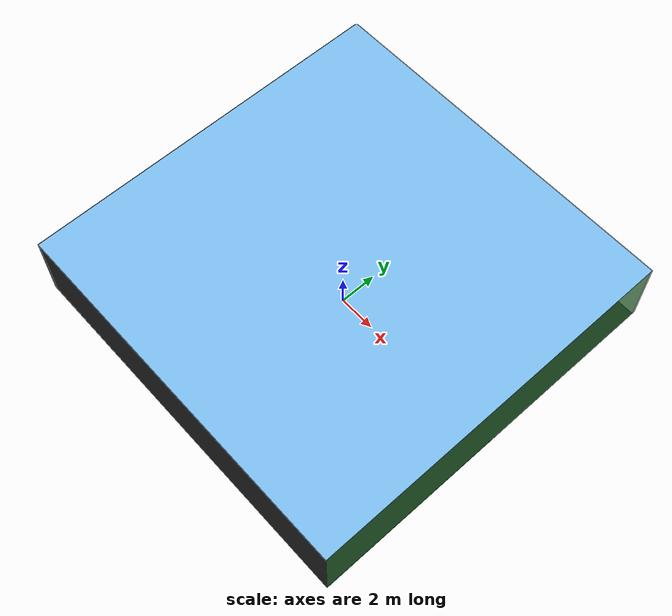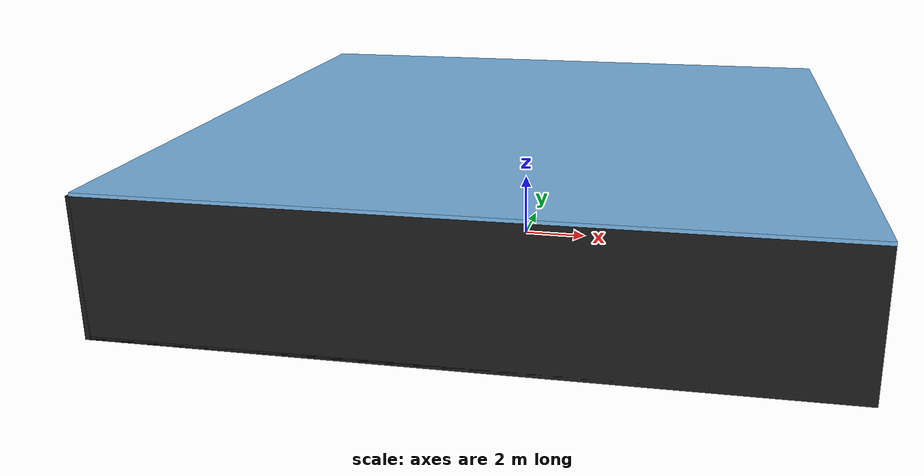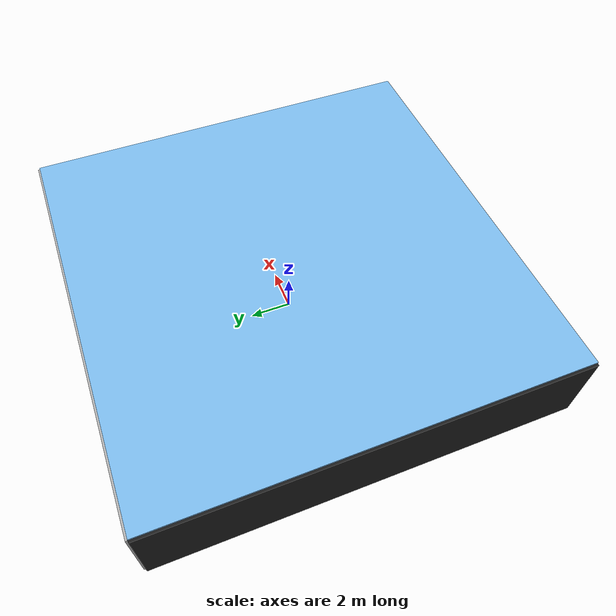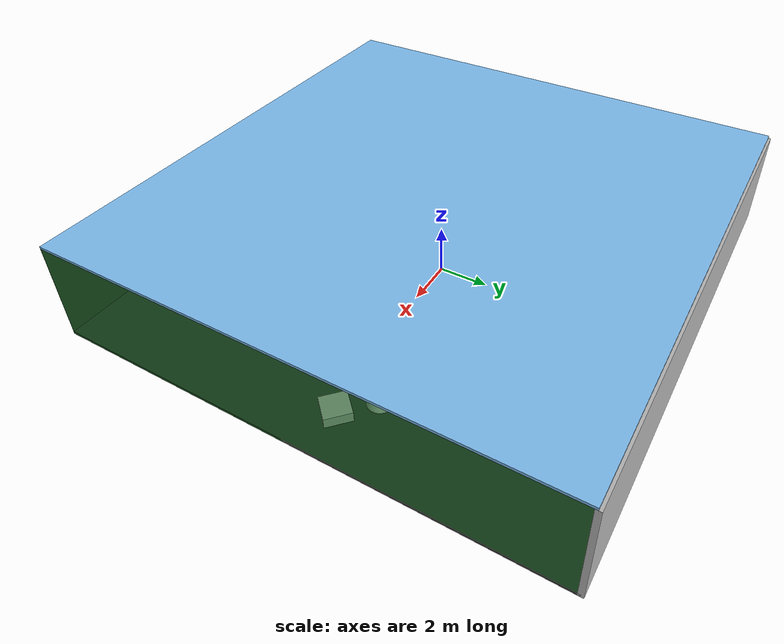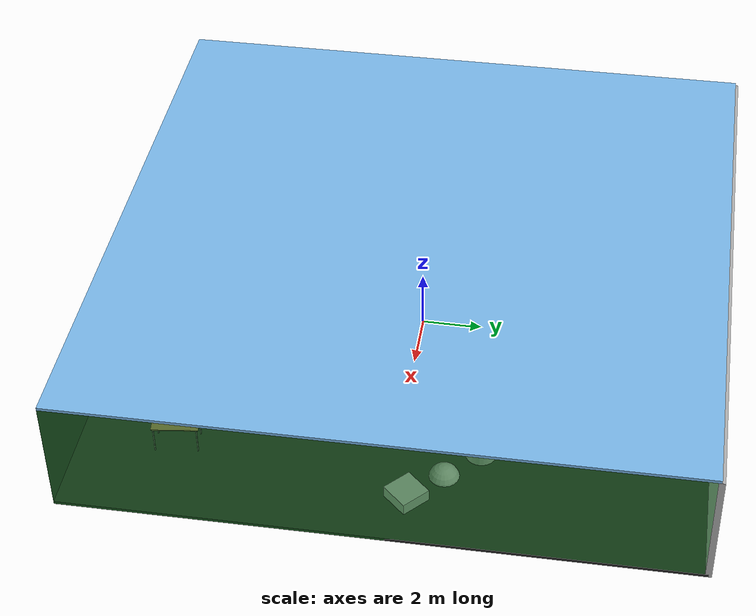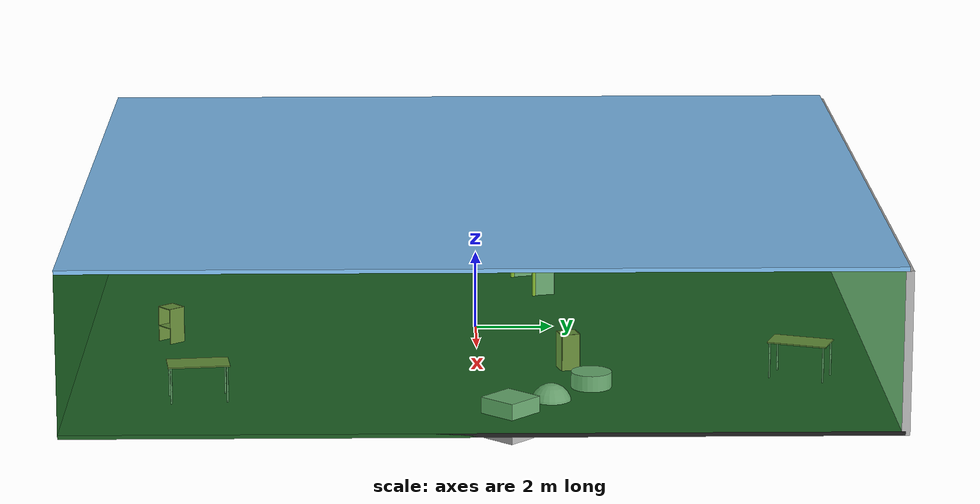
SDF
<sdf version="1.4">
 <world name="default">
  <physics type="ode">
   <max_step_size>0.001</max_step_size>
   <real_time_factor>1</real_time_factor>
   <real_time_update_rate>1000</real_time_update_rate>
   <gravity>0 0 -9.8</gravity>
  </physics>
  <scene><ambient>0.4 0.4 0.4 1</ambient><background>0.7 0.7 0.7 1</background><shadows>1</shadows></scene>
  <model name="Surrounding">
   <static>1</static>
   <link name="Ceiling">
    <collision name="Ceiling_Collision"><geometry><box><size>20 20 0.1</size></box></geometry></collision>
    <visual name="Ceiling_Visual">
     <geometry><box><size>20 20 0.1</size></box></geometry>
     <material>
      <script><uri>file://media/materials/scripts/gazebo.material</uri><name>Gazebo/SkyBlue</name></script>
     </material>
    </visual>
    <pose>0 0 4.05 0 0 0</pose>
   </link>
   <link name="Wall_South">
    <collision name="Wall_South_Collision">
     <geometry><box><size>20 0 4</size></box></geometry>
     <pose>0 0 2 0 -0 0</pose>
    </collision>
    <visual name="Wall_South_Visual">
     <pose>0 0 2 0 -0 0</pose>
     <geometry><box><size>20 0 4</size></box></geometry>
     <material>
      <script><uri>file://media/materials/scripts/gazebo.material</uri><name>Gazebo/FlatBlack</name></script>
     </material>
    </visual>
    <velocity_decay><linear>0</linear><angular>0</angular></velocity_decay>
    <pose>0 -10 0 0 -0 0</pose>
   </link>
   <link name="Wall_East">
    <collision name="Wall_21_Collision">
     <geometry><box><size>20 0 4</size></box></geometry>
     <pose>0 0 2 0 -0 0</pose>
    </collision>
    <visual name="Wall_21_Visual">
     <pose>0 0 2 0 -0 0</pose>
     <geometry><box><size>20 0 4</size></box></geometry>
     <material>
      <script><uri>file://media/materials/scripts/gazebo.material</uri><name>Gazebo/GreenTransparent</name></script>
     </material>
    </visual>
    <velocity_decay><linear>0</linear><angular>0</angular></velocity_decay>
    <pose>10 0 0 0 -0 1.5708</pose>
   </link>
   <link name="Wall_North">
    <collision name="Wall_22_Collision">
     <geometry><box><size>20 0.2 4</size></box></geometry>
     <pose>0 0 2 0 -0 0</pose>
    </collision>
    <visual name="Wall_22_Visual">
     <pose>0 0 2 0 -0 0</pose>
     <geometry><box><size>20 0.2 4</size></box></geometry>
     <material>
      <script><uri>file://media/materials/scripts/gazebo.material</uri><name>Gazebo/JointAnchor</name></script>
     </material>
    </visual>
    <velocity_decay><linear>0</linear><angular>0</angular></velocity_decay>
    <pose>0 10 0 0 -0 0</pose>
   </link>
   <link name="Wall_West">
    <collision name="Wall_23_Collision">
     <geometry><box><size>20 0.2 4</size></box></geometry>
     <pose>0 0 2 0 -0 0</pose>
    </collision>
    <visual name="Wall_23_Visual">
     <pose>0 0 2 0 -0 0</pose>
     <geometry><box><size>20 0.2 4</size></box></geometry>
     <material>
      <script><uri>file://media/materials/scripts/gazebo.material</uri><name>Gazebo/Black</name></script>
     </material>
    </visual>
    <velocity_decay><linear>0</linear><angular>0</angular></velocity_decay>
    <pose>-10 0 0 0 0 -1.5708</pose>
   </link>
   <link name="Ground_link">
    <collision name="collision">
     <pose>0 0 .05 0 -0 0</pose>
     <geometry><box><size>20 20 0.1</size></box></geometry>
    </collision>
    <visual name="visual">
     <pose>0 0 .05 0 -0 0</pose>
     <geometry><box><size>20 20 0.1</size></box></geometry>
     <material>
      <script><uri>file://media/materials/scripts/gazebo.material</uri><name>Gazebo/FlatBlack</name></script>
     </material>
    </visual>
   </link>
   <static>1</static>
  </model>
  <spherical_coordinates>
   <surface_model>EARTH_WGS84</surface_model>
   <latitude_deg>0</latitude_deg>
   <longitude_deg>0</longitude_deg>
   <elevation>0</elevation>
   <heading_deg>0</heading_deg>
  </spherical_coordinates>
  <light name="lightball_0" type="diffuse">
   <diffuse>0.8 0.8 0.8 1</diffuse>
   <specular>0.2 0.2 0.2 1</specular>
   <attenuation>
    <range>100</range>
    <constant>0.7</constant>
    <linear>0.01</linear>
    <quadratic>0.001</quadratic>
   </attenuation>
   <direction>-0.5 0.1 -0.9</direction>
   <pose>6.35487534913 -7.3252074235 0.939228337564 0 0 0</pose>
  </light>
  <light name="lightball_1" type="diffuse">
   <diffuse>0.8 0.8 0.8 1</diffuse>
   <specular>0.2 0.2 0.2 1</specular>
   <attenuation>
    <range>100</range>
    <constant>0.7</constant>
    <linear>0.01</linear>
    <quadratic>0.001</quadratic>
   </attenuation>
   <direction>-0.5 0.1 -0.9</direction>
   <pose>-3.47095316524 1.0622417551 3.53639077988 0 0 0</pose>
  </light>
  <light name="lightball_2" type="diffuse">
   <diffuse>0.8 0.8 0.8 1</diffuse>
   <specular>0.2 0.2 0.2 1</specular>
   <attenuation>
    <range>100</range>
    <constant>0.7</constant>
    <linear>0.01</linear>
    <quadratic>0.001</quadratic>
   </attenuation>
   <direction>-0.5 0.1 -0.9</direction>
   <pose>7.64404986398 -8.15121489969 2.31650308379 0 0 0</pose>
  </light>
  <light name="lightball_3" type="diffuse">
   <diffuse>0.8 0.8 0.8 1</diffuse>
   <specular>0.2 0.2 0.2 1</specular>
   <attenuation>
    <range>100</range>
    <constant>0.7</constant>
    <linear>0.01</linear>
    <quadratic>0.001</quadratic>
   </attenuation>
   <direction>-0.5 0.1 -0.9</direction>
   <pose>9.65176103261 -0.885851256436 1.38574295227 0 0 0</pose>
  </light>
  <light name="lightball_4" type="diffuse">
   <diffuse>0.8 0.8 0.8 1</diffuse>
   <specular>0.2 0.2 0.2 1</specular>
   <attenuation>
    <range>100</range>
    <constant>0.7</constant>
    <linear>0.01</linear>
    <quadratic>0.001</quadratic>
   </attenuation>
   <direction>-0.5 0.1 -0.9</direction>
   <pose>-1.19342213281 1.23768802114 3.04555399785 0 0 0</pose>
  </light>
  <light name="lightball_5" type="diffuse">
   <diffuse>0.8 0.8 0.8 1</diffuse>
   <specular>0.2 0.2 0.2 1</specular>
   <attenuation>
    <range>100</range>
    <constant>0.7</constant>
    <linear>0.01</linear>
    <quadratic>0.001</quadratic>
   </attenuation>
   <direction>-0.5 0.1 -0.9</direction>
   <pose>-3.29260828164 3.88035084206 2.18749238731 0 0 0</pose>
  </light>
  <light name="lightball_6" type="diffuse">
   <diffuse>0.8 0.8 0.8 1</diffuse>
   <specular>0.2 0.2 0.2 1</specular>
   <attenuation>
    <range>100</range>
    <constant>0.7</constant>
    <linear>0.01</linear>
    <quadratic>0.001</quadratic>
   </attenuation>
   <direction>-0.5 0.1 -0.9</direction>
   <pose>9.90199887474 -2.44749668342 2.50790816476 0 0 0</pose>
  </light>
  <light name="lightball_7" type="diffuse">
   <diffuse>0.8 0.8 0.8 1</diffuse>
   <specular>0.2 0.2 0.2 1</specular>
   <attenuation>
    <range>100</range>
    <constant>0.7</constant>
    <linear>0.01</linear>
    <quadratic>0.001</quadratic>
   </attenuation>
   <direction>-0.5 0.1 -0.9</direction>
   <pose>5.0070117889 -8.51290625873 2.66072951769 0 0 0</pose>
  </light>
  <light name="lightball_8" type="diffuse">
   <diffuse>0.8 0.8 0.8 1</diffuse>
   <specular>0.2 0.2 0.2 1</specular>
   <attenuation>
    <range>100</range>
    <constant>0.7</constant>
    <linear>0.01</linear>
    <quadratic>0.001</quadratic>
   </attenuation>
   <direction>-0.5 0.1 -0.9</direction>
   <pose>0.121377708851 3.41586836429 2.6182884054 0 0 0</pose>
  </light>
  <include>
   <uri>model://robocup_3Dsim_goal</uri>
   <pose>-3.86183547589 1.36159504738 0 0 0 1.82241644363</pose>
  </include>
  <include><uri>model://cabinet</uri><pose>1.62791351128 -7.83133620834 0 0 0 2.29232747176</pose></include>
  <include><uri>model://cabinet</uri><pose>4.33595940919 2.24743869256 0 0 0 0.253995611485</pose></include>
  <include><uri>model://table</uri><pose>5.20479116445 7.97077134619 0 0 0 1.21453757093</pose></include>
  <include><uri>model://table</uri><pose>6.93736327523 -6.84497616811 0 0 0 1.69363936393</pose></include>
  <include>
   <uri>model://textured_shapes</uri>
   <pose>7.16361107629 1.72529346628 0 0 0 0.819124244905</pose>
  </include>
 </world>
</sdf>

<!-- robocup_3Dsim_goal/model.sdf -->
<sdf version="1.5">
  <model name="robocup_3d_goal">
    <static>true</static>
    <link name="left_post">
      <pose>0 1.05 0.45 0 0 0</pose>
      <collision name="collision">
        <geometry>
          <cylinder>
            <radius>0.05</radius>
            <length>0.9</length>
          </cylinder>
        </geometry>
      </collision>
      <visual name="visual">
        <geometry>
          <cylinder>
            <radius>0.05</radius>
            <length>0.9</length>
          </cylinder>
        </geometry>
        <material>
          <script>
            <uri>file://media/materials/scripts/gazebo.material</uri>
            <name>Gazebo/ZincYellow</name>
          </script>
        </material>
      </visual>
    </link>
    <link name="left_support_horiz_lower">
      <pose>0.30 1.05 0.01 0 0 0</pose>
      <collision name="collision">
        <geometry>
          <box>
            <size>0.50 0.02 0.02</size>
          </box>
        </geometry>
      </collision>
      <visual name="visual">
        <geometry>
          <box>
            <size>0.50 0.02 0.02</size>
          </box>
        </geometry>
        <material>
          <script>
            <uri>file://media/materials/scripts/gazebo.material</uri>
            <name>Gazebo/White</name>
          </script>
        </material>
      </visual>
    </link>
    <link name="left_support_horiz_upper">
      <pose>0.30 1.05 0.79 0 0 0</pose>
      <collision name="collision">
        <geometry>
          <box>
            <size>0.50 0.02 0.02</size>
          </box>
        </geometry>
      </collision>
      <visual name="visual">
        <geometry>
          <box>
            <size>0.50 0.02 0.02</size>
          </box>
        </geometry>
        <material>
          <script>
            <uri>file://media/materials/scripts/gazebo.material</uri>
            <name>Gazebo/White</name>
          </script>
        </material>
      </visual>
    </link>
    <link name="left_support_vertical">
      <pose>0.56 1.05 0.4 0 1.5708 0</pose>
      <collision name="collision">
        <geometry>
          <box>
            <size>0.80 0.02 0.02</size>
          </box>
        </geometry>
      </collision>
      <visual name="visual">
        <geometry>
          <box>
            <size>0.80 0.02 0.02</size>
          </box>
        </geometry>
        <material>
          <script>
            <uri>file://media/materials/scripts/gazebo.material</uri>
            <name>Gazebo/White</name>
          </script>
        </material>
      </visual>
    </link>
    <link name="right_support_horiz_lower">
      <pose>0.30 -1.05 0.01 0 0 0</pose>
      <collision name="collision">
        <geometry>
          <box>
            <size>0.50 0.02 0.02</size>
          </box>
        </geometry>
      </collision>
      <visual name="visual">
        <geometry>
          <box>
            <size>0.50 0.02 0.02</size>
          </box>
        </geometry>
        <material>
          <script>
            <uri>file://media/materials/scripts/gazebo.material</uri>
            <name>Gazebo/White</name>
          </script>
        </material>
      </visual>
    </link>
    <link name="right_support_horiz_upper">
      <pose>0.30 -1.05 0.79 0 0 0</pose>
      <collision name="collision">
        <geometry>
          <box>
            <size>0.50 0.02 0.02</size>
          </box>
        </geometry>
      </collision>
      <visual name="visual">
        <geometry>
          <box>
            <size>0.50 0.02 0.02</size>
          </box>
        </geometry>
        <material>
          <script>
            <uri>file://media/materials/scripts/gazebo.material</uri>
            <name>Gazebo/White</name>
          </script>
        </material>
      </visual>
    </link>
    <link name="right_support_vertical">
      <pose>0.56 -1.05 0.4 0 1.5708 0</pose>
      <collision name="collision">
        <geometry>
          <box>
            <size>0.80 0.02 0.02</size>
          </box>
        </geometry>
      </collision>
      <visual name="visual">
        <geometry>
          <box>
            <size>0.80 0.02 0.02</size>
          </box>
        </geometry>
        <material>
          <script>
            <uri>file://media/materials/scripts/gazebo.material</uri>
            <name>Gazebo/White</name>
          </script>
        </material>
      </visual>
    </link>
    <link name="center_support_horiz_lower">
      <pose>0.56 0 0.01 0 1.5708 0</pose>
      <collision name="collision">
        <geometry>
          <box>
            <size>0.02 2.08 0.02</size>
          </box>
        </geometry>
      </collision>
      <visual name="visual">
        <geometry>
          <box>
            <size>0.02 2.08 0.02</size>
          </box>
        </geometry>
        <material>
          <script>
            <uri>file://media/materials/scripts/gazebo.material</uri>
            <name>Gazebo/White</name>
          </script>
        </material>
      </visual>
    </link>
    <link name="center_support_horiz_upper">
      <pose>0.56 0 0.79 0 1.5708 0</pose>
      <collision name="collision">
        <geometry>
          <box>
            <size>0.02 2.08 0.02</size>
          </box>
        </geometry>
      </collision>
      <visual name="visual">
        <geometry>
          <box>
            <size>0.02 2.08 0.02</size>
          </box>
        </geometry>
        <material>
          <script>
            <uri>file://media/materials/scripts/gazebo.material</uri>
            <name>Gazebo/White</name>
          </script>
        </material>
      </visual>
    </link>
    <link name="right_post">
      <pose>0 -1.05 0.45 0 0 0</pose>
      <collision name="collision">
        <geometry>
          <cylinder>
            <radius>0.05</radius>
            <length>0.9</length>
          </cylinder>
        </geometry>
      </collision>
      <visual name="visual">
        <geometry>
          <cylinder>
            <radius>0.05</radius>
            <length>0.9</length>
          </cylinder>
        </geometry>
        <material>
          <script>
            <uri>file://media/materials/scripts/gazebo.material</uri>
            <name>Gazebo/ZincYellow</name>
          </script>
        </material>
      </visual>
    </link>
    <link name="crossbar">
      <pose>0 0 0.85 1.57 1.57 0</pose>
      <collision name="collision">
        <geometry>
          <cylinder>
            <radius>0.05</radius>
            <length>2.0</length>
          </cylinder>
        </geometry>
      </collision>
      <visual name="visual">
        <geometry>
          <cylinder>
            <radius>0.05</radius>
            <length>2.0</length>
          </cylinder>
        </geometry>
        <material>
          <script>
            <uri>file://media/materials/scripts/gazebo.material</uri>
            <name>Gazebo/ZincYellow</name>
          </script>
        </material>
      </visual>
    </link>
    <link name="center_net">
      <pose>0.56 0 0.40 0 0 0</pose>
      <collision name="collision">
        <geometry>
          <box>
            <size>0.01 2.1 0.80</size>
          </box>
        </geometry>
      </collision>
      <visual name="visual">
        <geometry>
          <box>
            <size>0.01 2.1 0.80</size>
          </box>
        </geometry>
        <material>
          <script>
            <uri>model://../model_source/models/robocup09_spl_field/materials/scripts/</uri>
            <uri>model://../model_source/models/robocup09_spl_field/materials/textures/</uri>
            <name>RoboCup/Net</name>
          </script>
        </material>
      </visual>
    </link>
    <link name="left_net">
      <pose>0.30 1.05 0.40 0 0 0</pose>
      <collision name="collision">
        <geometry>
          <box>
            <size>0.50 0.01 0.76</size>
          </box>
        </geometry>
      </collision>
      <visual name="visual">
        <geometry>
          <box>
            <size>0.50 0.01 0.76</size>
          </box>
        </geometry>
        <material>
          <script>
            <uri>model://../model_source/models/robocup09_spl_field/materials/scripts/</uri>
            <uri>model://../model_source/models/robocup09_spl_field/materials/textures/</uri>
            <name>RoboCup/Net</name>
          </script>
        </material>
      </visual>
    </link>
    <link name="right_net">
      <pose>0.30 -1.05 0.40 0 0 0</pose>
      <collision name="collision">
        <geometry>
          <box>
            <size>0.50 0.01 0.76</size>
          </box>
        </geometry>
      </collision>
      <visual name="visual">
        <geometry>
          <box>
            <size>0.50 0.01 0.76</size>
          </box>
        </geometry>
        <material>
          <script>
            <uri>model://../model_source/models/robocup09_spl_field/materials/scripts/</uri>
            <uri>model://../model_source/models/robocup09_spl_field/materials/textures/</uri>
            <name>RoboCup/Net</name>
          </script>
        </material>
      </visual>
    </link>
  </model>
</sdf>

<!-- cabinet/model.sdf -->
<sdf version="1.5">
  <model name="cabinet">
    <static>true</static>
    <link name="cabinet_bottom_plate">
      <inertial>
        <pose>0 0 -1 0 0 0</pose>
        <inertia>
          <ixx>2.050000</ixx>
          <ixy>0</ixy>
          <ixz>0</ixz>
          <iyy>2.050000</iyy>
          <iyz>0</iyz>
          <izz>2.050000</izz>
        </inertia>
        <mass>25.000000</mass>
      </inertial>
      <collision name="cabinet_bottom_plate_geom">
        <pose>0 0 0.010000 0 0 0</pose>
        <geometry>
          <box>
            <size>0.450000 0.450000 0.020000</size>
          </box>
        </geometry>
      </collision>
      <visual name="cabinet_bottom_plate_geom_visual">
        <pose>0 0 0.010000 0 0 0</pose>
        <geometry>
          <box>
            <size>0.450000 0.450000 0.020000</size>
          </box>
        </geometry>
        <material>
          <script>
            <uri>model://media/materials/scripts/gazebo.material</uri>
            <name>Gazebo/Wood</name>
          </script>
        </material>
      </visual>
      <collision name="cabinet_bottom_plate_geom_cabinet_back_plate">
        <pose>0.235000 0 0.510000 0 0 0</pose>
        <geometry>
          <box>
            <size>0.020000 0.450000 1.020000</size>
          </box>
        </geometry>
      </collision>
      <visual name="cabinet_bottom_plate_geom_cabinet_back_plate_visual">
        <pose>0.235000 0 0.510000 0 0 0</pose>
        <geometry>
          <box>
            <size>0.020000 0.450000 1.020000</size>
          </box>
        </geometry>
        <material>
          <script>
            <uri>model://media/materials/scripts/gazebo.material</uri>
            <name>Gazebo/Wood</name>
          </script>
        </material>
      </visual>
      <collision name="cabinet_bottom_plate_geom_cabinet_left_plate">
        <pose>0 0.235000 0.510000 0 0 0</pose>
        <geometry>
          <box>
            <size>0.450000 0.020000 1.020000</size>
          </box>
        </geometry>
      </collision>
      <visual name="cabinet_bottom_plate_geom_cabinet_left_plate_visual">
        <pose>0 0.235000 0.510000 0 0 0</pose>
        <geometry>
          <box>
            <size>0.450000 0.020000 1.020000</size>
          </box>
        </geometry>
        <material>
          <script>
            <uri>model://media/materials/scripts/gazebo.material</uri>
            <name>Gazebo/Wood</name>
          </script>
        </material>
      </visual>
      <collision name="cabinet_bottom_plate_geom_cabinet_middle_plate">
        <pose>0 0 0.510000 0 0 0</pose>
        <geometry>
          <box>
            <size>0.450000 0.450000 0.020000</size>
          </box>
        </geometry>
      </collision>
      <visual name="cabinet_bottom_plate_geom_cabinet_middle_plate_visual">
        <pose>0 0 0.510000 0 0 0</pose>
        <geometry>
          <box>
            <size>0.450000 0.450000 0.020000</size>
          </box>
        </geometry>
        <material>
          <script>
            <uri>model://media/materials/scripts/gazebo.material</uri>
            <name>Gazebo/Wood</name>
          </script>
        </material>
      </visual>
      <collision name="cabinet_bottom_plate_geom_cabinet_right_plate">
        <pose>0 -0.235000 0.510000 0 0 0</pose>
        <geometry>
          <box>
            <size>0.450000 0.020000 1.020000</size>
          </box>
        </geometry>
      </collision>
      <visual name="cabinet_bottom_plate_geom_cabinet_right_plate_visual">
        <pose>0 -0.235000 0.510000 0 0 0</pose>
        <geometry>
          <box>
            <size>0.450000 0.020000 1.020000</size>
          </box>
        </geometry>
        <material>
          <script>
            <uri>model://media/materials/scripts/gazebo.material</uri>
            <name>Gazebo/Wood</name>
          </script>
        </material>
      </visual>
      <collision name="cabinet_bottom_plate_geom_cabinet_top_plate">
        <pose>0 0 1.010000 0 0 0</pose>
        <geometry>
          <box>
            <size>0.450000 0.450000 0.020000</size>
          </box>
        </geometry>
      </collision>
      <visual name="cabinet_bottom_plate_geom_cabinet_top_plate_visual">
        <pose>0 0 1.010000 0 0 0</pose>
        <geometry>
          <box>
            <size>0.450000 0.450000 0.020000</size>
          </box>
        </geometry>
        <material>
          <script>
            <uri>model://media/materials/scripts/gazebo.material</uri>
            <name>Gazebo/Wood</name>
          </script>
        </material>
      </visual>
    </link>
  </model>
</sdf>

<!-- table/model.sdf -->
<sdf version="1.5">
  <model name="table">
    <static>true</static>
    <link name="link">
      <collision name="surface">
        <pose>0 0 1.0 0 0 0</pose>
        <geometry>
          <box>
            <size>1.5 0.8 0.03</size>
          </box>
        </geometry>
        <surface>
          <friction>
            <ode>
              <mu>0.6</mu>
              <mu2>0.6</mu2>
            </ode>
          </friction>
        </surface>
      </collision>
      <visual name="visual1">
        <pose>0 0 1.0 0 0 0</pose>
        <geometry>
          <box>
            <size>1.5 0.8 0.03</size>
          </box>
        </geometry>
        <material>
          <script>
            <uri>model://media/materials/scripts/gazebo.material</uri>
            <name>Gazebo/Wood</name>
          </script>
        </material>
      </visual>
      <collision name="front_left_leg">
        <pose>0.68 0.38 0.5 0 0 0</pose>
        <geometry>
          <cylinder>
            <radius>0.02</radius>
            <length>1.0</length>
          </cylinder>
        </geometry>
      </collision>
      <visual name="front_left_leg">
        <pose>0.68 0.38 0.5 0 0 0</pose>
        <geometry>
          <cylinder>
            <radius>0.02</radius>
            <length>1.0</length>
          </cylinder>
        </geometry>
        <material>
          <script>
            <uri>model://media/materials/scripts/gazebo.material</uri>
            <name>Gazebo/Grey</name>
          </script>
        </material>
      </visual>
      <collision name="front_right_leg">
        <pose>0.68 -0.38 0.5 0 0 0</pose>
        <geometry>
          <cylinder>
            <radius>0.02</radius>
            <length>1.0</length>
          </cylinder>
        </geometry>
      </collision>
      <visual name="front_right_leg">
        <pose>0.68 -0.38 0.5 0 0 0</pose>
        <geometry>
          <cylinder>
            <radius>0.02</radius>
            <length>1.0</length>
          </cylinder>
        </geometry>
        <material>
          <script>
            <uri>model://media/materials/scripts/gazebo.material</uri>
            <name>Gazebo/Grey</name>
          </script>
        </material>
      </visual>
      <collision name="back_right_leg">
        <pose>-0.68 -0.38 0.5 0 0 0</pose>
        <geometry>
          <cylinder>
            <radius>0.02</radius>
            <length>1.0</length>
          </cylinder>
        </geometry>
      </collision>
      <visual name="back_right_leg">
        <pose>-0.68 -0.38 0.5 0 0 0</pose>
        <geometry>
          <cylinder>
            <radius>0.02</radius>
            <length>1.0</length>
          </cylinder>
        </geometry>
        <material>
          <script>
            <uri>model://media/materials/scripts/gazebo.material</uri>
            <name>Gazebo/Grey</name>
          </script>
        </material>
      </visual>
      <collision name="back_left_leg">
        <pose>-0.68 0.38 0.5 0 0 0</pose>
        <geometry>
          <cylinder>
            <radius>0.02</radius>
            <length>1.0</length>
          </cylinder>
        </geometry>
      </collision>
      <visual name="back_left_leg">
        <pose>-0.68 0.38 0.5 0 0 0</pose>
        <geometry>
          <cylinder>
            <radius>0.02</radius>
            <length>1.0</length>
          </cylinder>
        </geometry>
        <material>
          <script>
            <uri>model://media/materials/scripts/gazebo.material</uri>
            <name>Gazebo/Grey</name>
          </script>
        </material>
      </visual>
    </link>
  </model>
</sdf>

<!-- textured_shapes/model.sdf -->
<sdf version="1.6">
  <model name="textured_shapes">
    <pose>0 0 0.5 0 0 0</pose>
    <link name="box">
      <pose>0 -1.5 0 0 0 0</pose>
      <collision name="collision">
        <geometry>
          <box>
            <size>1 1 1</size>
          </box>
        </geometry>
      </collision>
      <visual name="visual">
        <geometry>
          <box>
            <size>1 1 1</size>
          </box>
        </geometry>
        <material>
          <script>
            <uri>model://../model_source/models/textured_shapes/materials/scripts</uri>
            <uri>model://../model_source/models/textured_shapes/materials/textures</uri>
            <name>TexturedShape/Squares</name>
          </script>
        </material>
      </visual>
    </link>
    <link name="sphere">
      <collision name="collision">
        <geometry>
          <sphere>
            <radius>0.5</radius>
          </sphere>
        </geometry>
      </collision>
      <visual name="visual">
        <geometry>
          <sphere>
            <radius>0.5</radius>
          </sphere>
        </geometry>
        <material>
          <script>
            <uri>model://../model_source/models/textured_shapes/materials/scripts</uri>
            <uri>model://../model_source/models/textured_shapes/materials/textures</uri>
            <name>TexturedShape/Squares</name>
          </script>
        </material>
      </visual>
    </link>
    <link name="cylinder">
      <pose>0 1.5 0 0 0 0</pose>
      <collision name="collision">
        <geometry>
          <cylinder>
            <radius>0.5</radius>
            <length>1</length>
          </cylinder>
        </geometry>
      </collision>
      <visual name="visual">
        <geometry>
          <cylinder>
            <radius>0.5</radius>
            <length>1</length>
          </cylinder>
        </geometry>
        <material>
          <script>
            <uri>model://../model_source/models/textured_shapes/materials/scripts</uri>
            <uri>model://../model_source/models/textured_shapes/materials/textures</uri>
            <name>TexturedShape/Squares</name>
          </script>
        </material>
      </visual>
    </link>
  </model>
</sdf>
